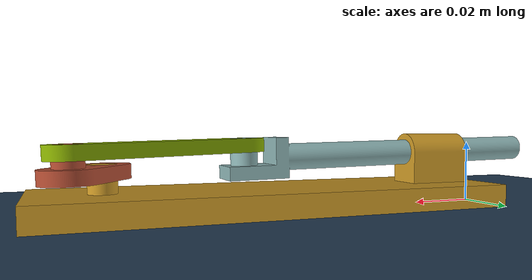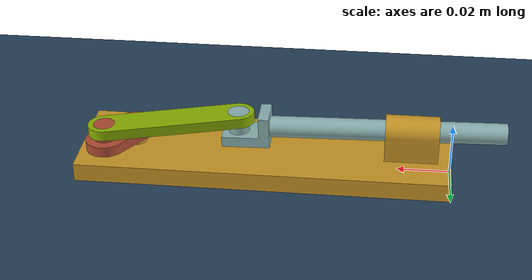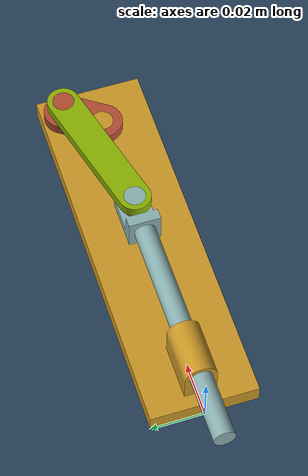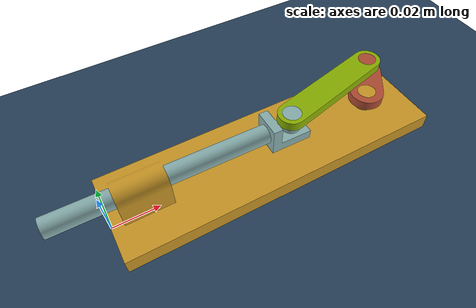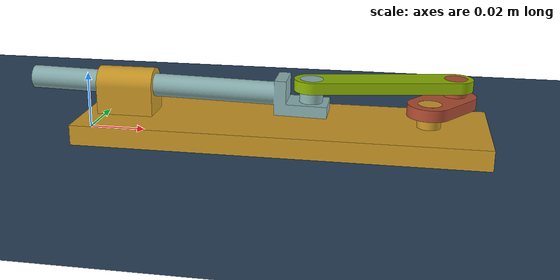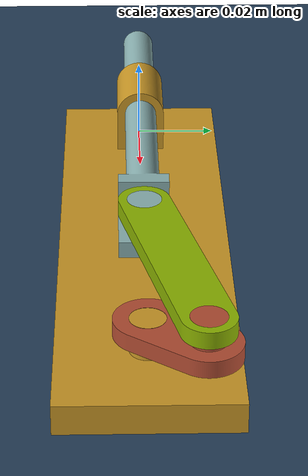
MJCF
<?xml version='1.0' encoding='utf-8'?>
<mujoco>
  <option integrator="implicitfast" timestep="0.002" solver="Newton" iterations="200" tolerance="1e-10" />
  <compiler meshdir="meshes" autolimits="true" inertiafromgeom="true" angle="radian" />
  <default>
    <joint damping="10.0" armature="1.0" />
    <geom conaffinity="0" condim="3" friction="1 0.5 0.5" margin="0" />
  </default>
  <asset>
    <texture type="skybox" builtin="gradient" rgb1="0.3 0.5 0.7" rgb2="0 0 0" width="512" height="3072" />
    <texture type="2d" name="groundplane" builtin="checker" mark="edge" rgb1="0.2 0.3 0.4" rgb2="0.1 0.2 0.3" markrgb="0.8 0.8 0.8" width="300" height="300" />
    <material name="groundplane" texture="groundplane" texuniform="true" texrepeat="5 5" reflectance="0.1" />
    <!--Part Meshes-->
    <mesh name="Base" file="Base.obj" scale="0.001 0.001 0.001" />
    <material name="Base" rgba="0.800000011920929 0.6000000238418579 0.14901961386203766 1.0" shininess="0.8999999761581421" />
    <!--Part Meshes-->
    <mesh name="SliderRod" file="SliderRod.obj" scale="0.001 0.001 0.001" />
    <material name="SliderRod" rgba="0.5490196347236633 0.7019608020782471 0.7019608020782471 1.0" shininess="0.8999999761581421" />
    <!--Part Meshes-->
    <mesh name="Crank" file="Crank.obj" scale="0.001 0.001 0.001" />
    <material name="Crank" rgba="0.7019608020782471 0.3019607961177826 0.20000000298023224 1.0" shininess="0.8999999761581421" />
    <!--Part Meshes-->
    <mesh name="ConnectingRod" file="ConnectingRod.obj" scale="0.001 0.001 0.001" />
    <material name="ConnectingRod" rgba="0.5490196347236633 0.7019608020782471 0.0 1.0" shininess="0.8999999761581421" />
  </asset>
  <worldbody>
    <!--Lighting and floor-->
    <light diffuse=".8 .8 .8" pos="0 0 4" dir="0 0 -1" />
    <light diffuse=".6 .6 .6" pos="4 4 4" dir="-1 -1 -1" />
    <geom name="floor" pos="0 0 -0.001" size="0 0 1" type="plane" material="groundplane" />
    <!--Assembly-->
    <body name="Base" pos="0 0 0" quat="1.0 0.0 0.0 0.0">
      <geom type="mesh" name="Base geom" mesh="Base" material="Base" contype="0" conaffinity="0" />
      <site name="Base site" pos="0.0 0.0 0.0" quat="0.0 0.0 0.0 1.0" rgba="0 0 0 0" />
      <body name="SliderRod" pos="0 0 0" quat="1.0 0.0 0.0 0.0">
        <geom type="mesh" name="SliderRod geom" mesh="SliderRod" material="SliderRod" contype="0" conaffinity="0" />
        <site name="SliderRod site" pos="0.0800058231623206 0.0 0.009840653177673617" quat="0.0 0.01052456676392414 0.0 0.9999446152134785" rgba="0 0 0 0" />
        <joint type="slide" name="Slider" pos="0.024144516817300732 0.0 0.017018010172267357" axis="-0.9997784669888635 0.0 0.02104796772608125" />
        <body name="ConnectingRod" pos="0 0 0" quat="1.0 0.0 0.0 0.0">
          <geom type="mesh" name="ConnectingRod geom" mesh="ConnectingRod" material="ConnectingRod" contype="0" conaffinity="0" />
          <site name="ConnectingRod site" pos="0.1286272452532091 0.012298883861936814 0.016818816948340736" quat="0.010443413352834179 -0.0013044627668666886 0.9922341870081318 -0.12393769251823059" rgba="0 0 0 0" />
          <joint type="hinge" name="Revolute002" pos="0.08025839877503359 0.0 0.021837994781539975" axis="0.02104796772608139 -4.336808689942018e-19 0.9997784669888634" />
        </body>
      </body>
      <body name="Crank" pos="0 0 0" quat="1.0 0.0 0.0 0.0">
        <geom type="mesh" name="Crank geom" mesh="Crank" material="Crank" contype="0" conaffinity="0" />
        <site name="Crank site" pos="0.11991580812909566 -1.1625481821426244e-17 0.011000886132044545" quat="-0.0031580225656117587 0.01003959157751866 -0.30004538239336653 0.9538668680685215" rgba="0 0 0 0" />
        <joint type="hinge" name="Revolute" pos="0.12 2.0754979851800727e-21 0.015" axis="0.02104796772608139 -8.673617379884035e-19 0.9997784669888635" />
      </body>
    </body>
  </worldbody>
  <contact />
  <equality>
    <connect body1="ConnectingRod" body2="Crank" name="connect_hinge_Revolute001_1" anchor="0.12871143712411343 0.012298883861936814 0.02081793081629619" />
    <connect body1="ConnectingRod" body2="Crank" name="connect_hinge_Revolute001_2" anchor="0.12892191680137424 0.012298883861936814 0.030815715486184822" />
  </equality>
  <tendon />
  <actuator>
    <position name="Slider" joint="Slider" kp="100" />
    <position name="Revolute" joint="Revolute" kp="100" />
    <position name="Revolute002" joint="Revolute002" kp="100" />
  </actuator>
  <sensor>
    <jointpos name="Slider_pos" joint="Slider" />
    <jointpos name="Revolute_pos" joint="Revolute" />
    <jointpos name="Revolute002_pos" joint="Revolute002" />
  </sensor>
</mujoco>
